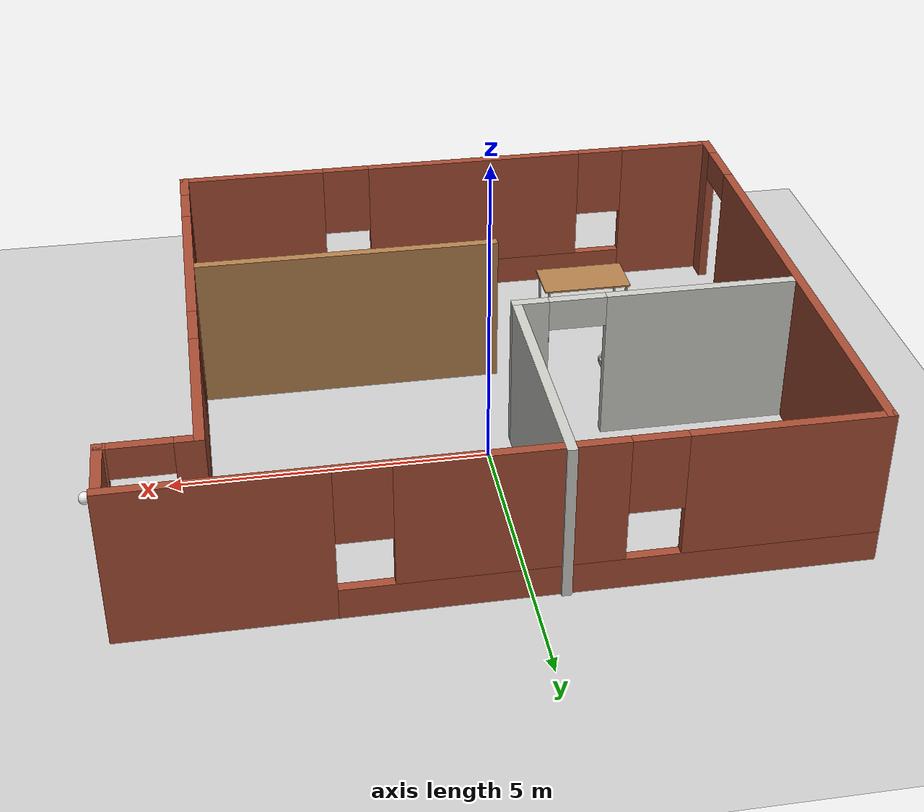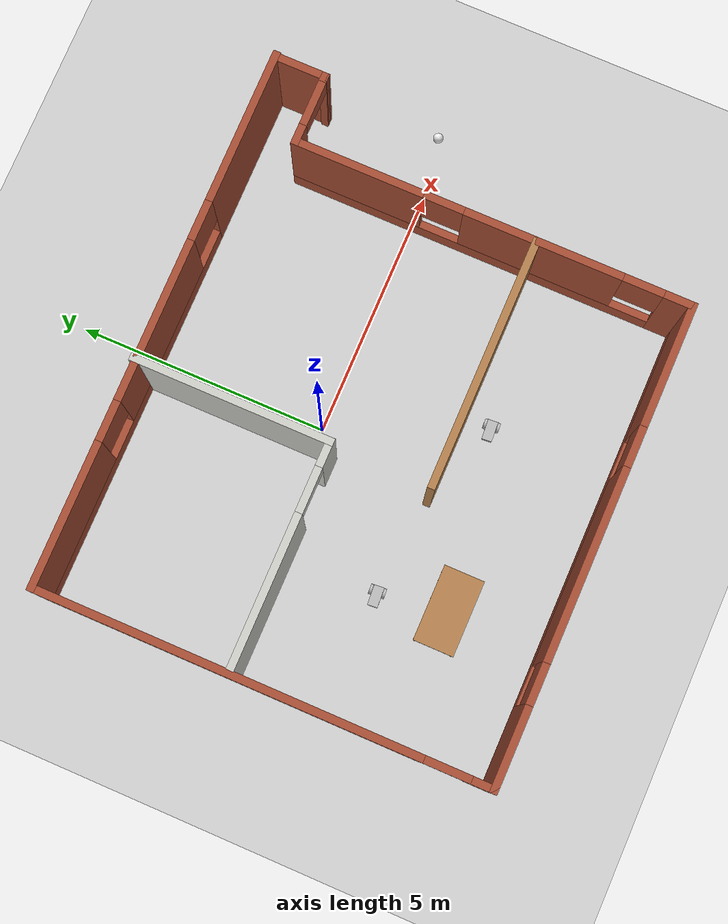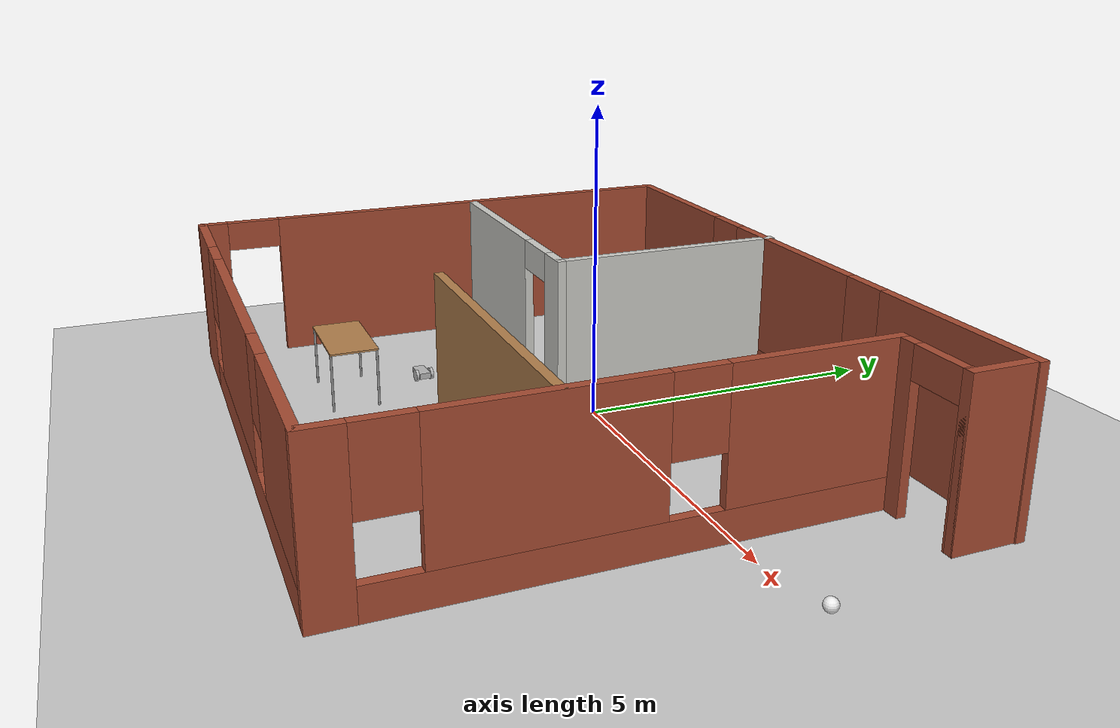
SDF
<sdf version="1.6">
 <world name="default">
  <plugin name="hello" filename="libhello.so"/>
  <light name="sun" type="directional">
   <pose>0 0 10 0 -0 0</pose>
   <diffuse>0.8 0.8 0.8 1</diffuse>
   <specular>0.1 0.1 0.1 1</specular>
   <attenuation>
    <range>1000</range>
    <constant>0.9</constant>
    <linear>0.01</linear>
    <quadratic>0.001</quadratic>
   </attenuation>
   <direction>-0.5 0.5 -1</direction>
  </light>
  <model name="ground_plane">
   <static>1</static>
   <link name="link">
    <collision name="collision">
     <geometry><plane><normal>0 0 1</normal><size>100 100</size></plane></geometry>
     <surface><friction><ode><mu>100</mu><mu2>50</mu2></ode></friction></surface>
    </collision>
    <visual name="visual">
     <cast_shadows>0</cast_shadows>
     <geometry><plane><normal>0 0 1</normal><size>100 100</size></plane></geometry>
     <material>
      <script><uri>file://media/materials/scripts/gazebo.material</uri><name>Gazebo/Grey</name></script>
     </material>
    </visual>
   </link>
  </model>
  <gravity>0 0 -9.8</gravity>
  <magnetic_field>6e-06 2.3e-05 -4.2e-05</magnetic_field>
  <atmosphere type="adiabatic"/>
  <physics name="default_physics" default="0" type="ode">
   <max_step_size>0.001</max_step_size>
   <real_time_factor>1</real_time_factor>
   <real_time_update_rate>1000</real_time_update_rate>
  </physics>
  <scene><ambient>0.4 0.4 0.4 1</ambient><background>0.7 0.7 0.7 1</background><shadows>1</shadows></scene>
  <spherical_coordinates>
   <surface_model>EARTH_WGS84</surface_model>
   <latitude_deg>0</latitude_deg>
   <longitude_deg>0</longitude_deg>
   <elevation>0</elevation>
   <heading_deg>0</heading_deg>
  </spherical_coordinates>
  <model name="mybuilding">
   <pose>0.397006 -1.00282 0 0 -0 0</pose>
   <link name="Wall_10">
    <pose>0 4.39952 0 0 -0 3.14159</pose>
    <visual name="Wall_10_Visual_0">
     <pose>-3.87928 0 1.25 0 -0 0</pose>
     <geometry><box><size>3.11594 0.15 2.5</size></box></geometry>
     <material>
      <script><uri>file://media/materials/scripts/gazebo.material</uri><name>Gazebo/Bricks</name></script>
      <ambient>1 1 1 1</ambient>
     </material>
     <meta><layer>0</layer></meta>
    </visual>
    <collision name="Wall_10_Collision_0">
     <geometry><box><size>3.11594 0.15 2.5</size></box></geometry>
     <pose>-3.87928 0 1.25 0 -0 0</pose>
    </collision>
    <visual name="Wall_10_Visual_1">
     <pose>1.55797 0 0.25 0 -0 0</pose>
     <geometry><box><size>7.75856 0.15 0.5</size></box></geometry>
     <material>
      <script><uri>file://media/materials/scripts/gazebo.material</uri><name>Gazebo/Bricks</name></script>
      <ambient>1 1 1 1</ambient>
     </material>
     <meta><layer>0</layer></meta>
    </visual>
    <collision name="Wall_10_Collision_1">
     <geometry><box><size>7.75856 0.15 0.5</size></box></geometry>
     <pose>1.55797 0 0.25 0 -0 0</pose>
    </collision>
    <visual name="Wall_10_Visual_2">
     <pose>0.09618 0 1.5 0 -0 0</pose>
     <geometry><box><size>3.23497 0.15 2</size></box></geometry>
     <material>
      <script><uri>file://media/materials/scripts/gazebo.material</uri><name>Gazebo/Bricks</name></script>
      <ambient>1 1 1 1</ambient>
     </material>
     <meta><layer>0</layer></meta>
    </visual>
    <collision name="Wall_10_Collision_2">
     <geometry><box><size>3.23497 0.15 2</size></box></geometry>
     <pose>0.09618 0 1.5 0 -0 0</pose>
    </collision>
    <visual name="Wall_10_Visual_3">
     <pose>3.97546 0 1.5 0 -0 0</pose>
     <geometry><box><size>2.92359 0.15 2</size></box></geometry>
     <material>
      <script><uri>file://media/materials/scripts/gazebo.material</uri><name>Gazebo/Bricks</name></script>
      <ambient>1 1 1 1</ambient>
     </material>
     <meta><layer>0</layer></meta>
    </visual>
    <collision name="Wall_10_Collision_3">
     <geometry><box><size>2.92359 0.15 2</size></box></geometry>
     <pose>3.97546 0 1.5 0 -0 0</pose>
    </collision>
    <visual name="Wall_10_Visual_4">
     <pose>-1.92131 0 1.9 0 -0 0</pose>
     <geometry><box><size>0.8 0.15 1.2</size></box></geometry>
     <material>
      <script><uri>file://media/materials/scripts/gazebo.material</uri><name>Gazebo/Bricks</name></script>
      <ambient>1 1 1 1</ambient>
     </material>
     <meta><layer>0</layer></meta>
    </visual>
    <collision name="Wall_10_Collision_4">
     <geometry><box><size>0.8 0.15 1.2</size></box></geometry>
     <pose>-1.92131 0 1.9 0 -0 0</pose>
    </collision>
    <visual name="Wall_10_Visual_5">
     <pose>2.11367 0 1.9 0 -0 0</pose>
     <geometry><box><size>0.8 0.15 1.2</size></box></geometry>
     <material>
      <script><uri>file://media/materials/scripts/gazebo.material</uri><name>Gazebo/Bricks</name></script>
      <ambient>1 1 1 1</ambient>
     </material>
     <meta><layer>0</layer></meta>
    </visual>
    <collision name="Wall_10_Collision_5">
     <geometry><box><size>0.8 0.15 1.2</size></box></geometry>
     <pose>2.11367 0 1.9 0 -0 0</pose>
    </collision>
   </link>
   <link name="Wall_11">
    <pose>-5.36225 -0.025483 0 0 0 -1.5708</pose>
    <visual name="Wall_11_Visual_0">
     <pose>-0.69944 0 1.25 0 -0 0</pose>
     <geometry><box><size>7.60112 0.15 2.5</size></box></geometry>
     <material>
      <script><uri>file://media/materials/scripts/gazebo.material</uri><name>Gazebo/Bricks</name></script>
      <ambient>1 1 1 1</ambient>
     </material>
     <meta><layer>0</layer></meta>
    </visual>
    <collision name="Wall_11_Collision_0">
     <geometry><box><size>7.60112 0.15 2.5</size></box></geometry>
     <pose>-0.69944 0 1.25 0 -0 0</pose>
    </collision>
    <visual name="Wall_11_Visual_1">
     <pose>4.25056 0 1.25 0 -0 0</pose>
     <geometry><box><size>0.498881 0.15 2.5</size></box></geometry>
     <material>
      <script><uri>file://media/materials/scripts/gazebo.material</uri><name>Gazebo/Bricks</name></script>
      <ambient>1 1 1 1</ambient>
     </material>
     <meta><layer>0</layer></meta>
    </visual>
    <collision name="Wall_11_Collision_1">
     <geometry><box><size>0.498881 0.15 2.5</size></box></geometry>
     <pose>4.25056 0 1.25 0 -0 0</pose>
    </collision>
    <visual name="Wall_11_Visual_2">
     <pose>3.55112 0 2.25 0 -0 0</pose>
     <geometry><box><size>0.9 0.15 0.5</size></box></geometry>
     <material>
      <script><uri>file://media/materials/scripts/gazebo.material</uri><name>Gazebo/Bricks</name></script>
      <ambient>1 1 1 1</ambient>
     </material>
     <meta><layer>0</layer></meta>
    </visual>
    <collision name="Wall_11_Collision_2">
     <geometry><box><size>0.9 0.15 0.5</size></box></geometry>
     <pose>3.55112 0 2.25 0 -0 0</pose>
    </collision>
   </link>
   <link name="Wall_12">
    <pose>-0.687251 -4.45048 0 0 -0 0</pose>
    <visual name="Wall_12_Visual_0">
     <pose>-3.92485 0 1.25 0 -0 0</pose>
     <geometry><box><size>1.65031 0.15 2.5</size></box></geometry>
     <material>
      <script><uri>file://media/materials/scripts/gazebo.material</uri><name>Gazebo/Bricks</name></script>
      <ambient>1 1 1 1</ambient>
     </material>
     <meta><layer>0</layer></meta>
    </visual>
    <collision name="Wall_12_Collision_0">
     <geometry><box><size>1.65031 0.15 2.5</size></box></geometry>
     <pose>-3.92485 0 1.25 0 -0 0</pose>
    </collision>
    <visual name="Wall_12_Visual_1">
     <pose>0.825154 0 0.25 0 -0 0</pose>
     <geometry><box><size>7.84969 0.15 0.5</size></box></geometry>
     <material>
      <script><uri>file://media/materials/scripts/gazebo.material</uri><name>Gazebo/Bricks</name></script>
      <ambient>1 1 1 1</ambient>
     </material>
     <meta><layer>0</layer></meta>
    </visual>
    <collision name="Wall_12_Collision_1">
     <geometry><box><size>7.84969 0.15 0.5</size></box></geometry>
     <pose>0.825154 0 0.25 0 -0 0</pose>
    </collision>
    <visual name="Wall_12_Visual_2">
     <pose>-0.412075 0 1.5 0 -0 0</pose>
     <geometry><box><size>3.77523 0.15 2</size></box></geometry>
     <material>
      <script><uri>file://media/materials/scripts/gazebo.material</uri><name>Gazebo/Bricks</name></script>
      <ambient>1 1 1 1</ambient>
     </material>
     <meta><layer>0</layer></meta>
    </visual>
    <collision name="Wall_12_Collision_2">
     <geometry><box><size>3.77523 0.15 2</size></box></geometry>
     <pose>-0.412075 0 1.5 0 -0 0</pose>
    </collision>
    <visual name="Wall_12_Visual_3">
     <pose>3.51277 0 1.5 0 -0 0</pose>
     <geometry><box><size>2.47446 0.15 2</size></box></geometry>
     <material>
      <script><uri>file://media/materials/scripts/gazebo.material</uri><name>Gazebo/Bricks</name></script>
      <ambient>1 1 1 1</ambient>
     </material>
     <meta><layer>0</layer></meta>
    </visual>
    <collision name="Wall_12_Collision_3">
     <geometry><box><size>2.47446 0.15 2</size></box></geometry>
     <pose>3.51277 0 1.5 0 -0 0</pose>
    </collision>
    <visual name="Wall_12_Visual_4">
     <pose>-2.69969 0 1.9 0 -0 0</pose>
     <geometry><box><size>0.8 0.15 1.2</size></box></geometry>
     <material>
      <script><uri>file://media/materials/scripts/gazebo.material</uri><name>Gazebo/Bricks</name></script>
      <ambient>1 1 1 1</ambient>
     </material>
     <meta><layer>0</layer></meta>
    </visual>
    <collision name="Wall_12_Collision_4">
     <geometry><box><size>0.8 0.15 1.2</size></box></geometry>
     <pose>-2.69969 0 1.9 0 -0 0</pose>
    </collision>
    <visual name="Wall_12_Visual_5">
     <pose>1.87554 0 1.9 0 -0 0</pose>
     <geometry><box><size>0.8 0.15 1.2</size></box></geometry>
     <material>
      <script><uri>file://media/materials/scripts/gazebo.material</uri><name>Gazebo/Bricks</name></script>
      <ambient>1 1 1 1</ambient>
     </material>
     <meta><layer>0</layer></meta>
    </visual>
    <collision name="Wall_12_Collision_5">
     <geometry><box><size>0.8 0.15 1.2</size></box></geometry>
     <pose>1.87554 0 1.9 0 -0 0</pose>
    </collision>
   </link>
   <link name="Wall_13">
    <pose>3.98775 -0.525483 0 0 -0 1.5708</pose>
    <visual name="Wall_13_Visual_0">
     <pose>-3.68566 0 1.25 0 -0 0</pose>
     <geometry><box><size>0.628682 0.15 2.5</size></box></geometry>
     <material>
      <script><uri>file://media/materials/scripts/gazebo.material</uri><name>Gazebo/Bricks</name></script>
      <ambient>1 1 1 1</ambient>
     </material>
     <meta><layer>0</layer></meta>
    </visual>
    <collision name="Wall_13_Collision_0">
     <geometry><box><size>0.628682 0.15 2.5</size></box></geometry>
     <pose>-3.68566 0 1.25 0 -0 0</pose>
    </collision>
    <visual name="Wall_13_Visual_1">
     <pose>0.314341 0 0.25 0 -0 0</pose>
     <geometry><box><size>7.37132 0.15 0.5</size></box></geometry>
     <material>
      <script><uri>file://media/materials/scripts/gazebo.material</uri><name>Gazebo/Bricks</name></script>
      <ambient>1 1 1 1</ambient>
     </material>
     <meta><layer>0</layer></meta>
    </visual>
    <collision name="Wall_13_Collision_1">
     <geometry><box><size>7.37132 0.15 0.5</size></box></geometry>
     <pose>0.314341 0 0.25 0 -0 0</pose>
    </collision>
    <visual name="Wall_13_Visual_2">
     <pose>-1.00369 0 1.5 0 -0 0</pose>
     <geometry><box><size>3.13526 0.15 2</size></box></geometry>
     <material>
      <script><uri>file://media/materials/scripts/gazebo.material</uri><name>Gazebo/Bricks</name></script>
      <ambient>1 1 1 1</ambient>
     </material>
     <meta><layer>0</layer></meta>
    </visual>
    <collision name="Wall_13_Collision_2">
     <geometry><box><size>3.13526 0.15 2</size></box></geometry>
     <pose>-1.00369 0 1.5 0 -0 0</pose>
    </collision>
    <visual name="Wall_13_Visual_3">
     <pose>2.68197 0 1.5 0 -0 0</pose>
     <geometry><box><size>2.63605 0.15 2</size></box></geometry>
     <material>
      <script><uri>file://media/materials/scripts/gazebo.material</uri><name>Gazebo/Bricks</name></script>
      <ambient>1 1 1 1</ambient>
     </material>
     <meta><layer>0</layer></meta>
    </visual>
    <collision name="Wall_13_Collision_3">
     <geometry><box><size>2.63605 0.15 2</size></box></geometry>
     <pose>2.68197 0 1.5 0 -0 0</pose>
    </collision>
    <visual name="Wall_13_Visual_4">
     <pose>-2.97132 0 1.9 0 -0 0</pose>
     <geometry><box><size>0.8 0.15 1.2</size></box></geometry>
     <material>
      <script><uri>file://media/materials/scripts/gazebo.material</uri><name>Gazebo/Bricks</name></script>
      <ambient>1 1 1 1</ambient>
     </material>
     <meta><layer>0</layer></meta>
    </visual>
    <collision name="Wall_13_Collision_4">
     <geometry><box><size>0.8 0.15 1.2</size></box></geometry>
     <pose>-2.97132 0 1.9 0 -0 0</pose>
    </collision>
    <visual name="Wall_13_Visual_5">
     <pose>0.963946 0 1.9 0 -0 0</pose>
     <geometry><box><size>0.8 0.15 1.2</size></box></geometry>
     <material>
      <script><uri>file://media/materials/scripts/gazebo.material</uri><name>Gazebo/Bricks</name></script>
      <ambient>1 1 1 1</ambient>
     </material>
     <meta><layer>0</layer></meta>
    </visual>
    <collision name="Wall_13_Collision_5">
     <geometry><box><size>0.8 0.15 1.2</size></box></geometry>
     <pose>0.963946 0 1.9 0 -0 0</pose>
    </collision>
   </link>
   <link name="Wall_14">
    <pose>4.66275 3.39952 0 0 -0 0</pose>
    <visual name="Wall_14_Visual_0">
     <pose>-0.542046 0 1.25 0 -0 0</pose>
     <geometry><box><size>0.415909 0.15 2.5</size></box></geometry>
     <material>
      <script><uri>file://media/materials/scripts/gazebo.material</uri><name>Gazebo/Bricks</name></script>
      <ambient>1 1 1 1</ambient>
     </material>
     <meta><layer>0</layer></meta>
    </visual>
    <collision name="Wall_14_Collision_0">
     <geometry><box><size>0.415909 0.15 2.5</size></box></geometry>
     <pose>-0.542046 0 1.25 0 -0 0</pose>
    </collision>
    <visual name="Wall_14_Visual_1">
     <pose>0.657954 0 1.25 0 -0 0</pose>
     <geometry><box><size>0.184091 0.15 2.5</size></box></geometry>
     <material>
      <script><uri>file://media/materials/scripts/gazebo.material</uri><name>Gazebo/Bricks</name></script>
      <ambient>1 1 1 1</ambient>
     </material>
     <meta><layer>0</layer></meta>
    </visual>
    <collision name="Wall_14_Collision_1">
     <geometry><box><size>0.184091 0.15 2.5</size></box></geometry>
     <pose>0.657954 0 1.25 0 -0 0</pose>
    </collision>
    <visual name="Wall_14_Visual_2">
     <pose>0.115909 0 2.25 0 -0 0</pose>
     <geometry><box><size>0.9 0.15 0.5</size></box></geometry>
     <material>
      <script><uri>file://media/materials/scripts/gazebo.material</uri><name>Gazebo/Bricks</name></script>
      <ambient>1 1 1 1</ambient>
     </material>
     <meta><layer>0</layer></meta>
    </visual>
    <collision name="Wall_14_Collision_2">
     <geometry><box><size>0.9 0.15 0.5</size></box></geometry>
     <pose>0.115909 0 2.25 0 -0 0</pose>
    </collision>
   </link>
   <link name="Wall_15">
    <collision name="Wall_15_Collision">
     <geometry><box><size>1 0.15 2.5</size></box></geometry>
     <pose>0 0 1.25 0 -0 0</pose>
    </collision>
    <visual name="Wall_15_Visual">
     <pose>0 0 1.25 0 -0 0</pose>
     <geometry><box><size>1 0.15 2.5</size></box></geometry>
     <material>
      <script><uri>file://media/materials/scripts/gazebo.material</uri><name>Gazebo/Bricks</name></script>
      <ambient>1 1 1 1</ambient>
     </material>
     <meta><layer>0</layer></meta>
    </visual>
    <pose>5.33775 3.82452 0 0 -0 1.5708</pose>
   </link>
   <link name="Wall_17">
    <collision name="Wall_17_Collision">
     <geometry><box><size>4 0.15 2.5</size></box></geometry>
     <pose>0 0 1.25 0 -0 0</pose>
    </collision>
    <visual name="Wall_17_Visual">
     <pose>0 0 1.25 0 -0 0</pose>
     <geometry><box><size>4 0.15 2.5</size></box></geometry>
     <material>
      <script><uri>file://media/materials/scripts/gazebo.material</uri><name>Gazebo/CeilingTiled</name></script>
      <ambient>0.333333 0.333333 1 1</ambient>
     </material>
     <meta><layer>0</layer></meta>
    </visual>
    <pose>-0.879432 2.52548 0 0 0 -1.5708</pose>
   </link>
   <link name="Wall_18">
    <pose>-3.05443 0.600483 0 0 -0 3.14159</pose>
    <visual name="Wall_18_Visual_0">
     <pose>-1.96198 0 1.25 0 -0 0</pose>
     <geometry><box><size>0.576044 0.15 2.5</size></box></geometry>
     <material>
      <script><uri>file://media/materials/scripts/gazebo.material</uri><name>Gazebo/CeilingTiled</name></script>
      <ambient>0.333333 0.333333 1 1</ambient>
     </material>
     <meta><layer>0</layer></meta>
    </visual>
    <collision name="Wall_18_Collision_0">
     <geometry><box><size>0.576044 0.15 2.5</size></box></geometry>
     <pose>-1.96198 0 1.25 0 -0 0</pose>
    </collision>
    <visual name="Wall_18_Visual_1">
     <pose>0.738022 0 1.25 0 -0 0</pose>
     <geometry><box><size>3.02396 0.15 2.5</size></box></geometry>
     <material>
      <script><uri>file://media/materials/scripts/gazebo.material</uri><name>Gazebo/CeilingTiled</name></script>
      <ambient>0.333333 0.333333 1 1</ambient>
     </material>
     <meta><layer>0</layer></meta>
    </visual>
    <collision name="Wall_18_Collision_1">
     <geometry><box><size>3.02396 0.15 2.5</size></box></geometry>
     <pose>0.738022 0 1.25 0 -0 0</pose>
    </collision>
    <visual name="Wall_18_Visual_2">
     <pose>-1.22396 0 2.25 0 -0 0</pose>
     <geometry><box><size>0.9 0.15 0.5</size></box></geometry>
     <material>
      <script><uri>file://media/materials/scripts/gazebo.material</uri><name>Gazebo/CeilingTiled</name></script>
      <ambient>0.333333 0.333333 1 1</ambient>
     </material>
     <meta><layer>0</layer></meta>
    </visual>
    <collision name="Wall_18_Collision_2">
     <geometry><box><size>0.9 0.15 0.5</size></box></geometry>
     <pose>-1.22396 0 2.25 0 -0 0</pose>
    </collision>
   </link>
   <link name="Wall_20">
    <collision name="Wall_20_Collision">
     <geometry><box><size>5 0.15 2.5</size></box></geometry>
     <pose>0 0 1.25 0 -0 0</pose>
    </collision>
    <visual name="Wall_20_Visual">
     <pose>0 0 1.25 0 -0 0</pose>
     <geometry><box><size>5 0.15 2.5</size></box></geometry>
     <material>
      <script><uri>file://media/materials/scripts/gazebo.material</uri><name>Gazebo/Wood</name></script>
      <ambient>1 1 1 1</ambient>
     </material>
     <meta><layer>0</layer></meta>
    </visual>
    <pose>1.54324 -1.38889 0 0 -0 3.14159</pose>
   </link>
   <static>1</static>
  </model>
  <model name="robot01">
   <static>0</static>
   <link name="chassis">
    <pose>0 0 0.1 0 -0 0</pose>
    <collision name="collision"><geometry><box><size>0.4 0.2 0.1</size></box></geometry></collision>
    <visual name="visual"><geometry><box><size>0.4 0.2 0.1</size></box></geometry></visual>
    <collision name="caster_collision">
     <pose>-0.15 0 -0.05 0 -0 0</pose>
     <geometry><sphere><radius>0.05</radius></sphere></geometry>
     <surface><friction><ode><mu>0</mu><mu2>0</mu2><slip1>1</slip1><slip2>1</slip2></ode></friction></surface>
    </collision>
    <visual name="caster_visual">
     <pose>-0.15 0 -0.05 0 -0 0</pose>
     <geometry><sphere><radius>0.05</radius></sphere></geometry>
    </visual>
    <inertial>
     <inertia><ixx>1</ixx><ixy>0</ixy><ixz>0</ixz><iyy>1</iyy><iyz>0</iyz><izz>1</izz></inertia>
     <mass>1</mass>
    </inertial>
   </link>
   <link name="left_wheel">
    <pose>0.1 0.13 0.1 -0 1.5707 1.5707</pose>
    <collision name="collision">
     <geometry><cylinder><radius>0.1</radius><length>0.05</length></cylinder></geometry>
    </collision>
    <visual name="visual">
     <geometry><cylinder><radius>0.1</radius><length>0.05</length></cylinder></geometry>
    </visual>
    <inertial>
     <inertia><ixx>1</ixx><ixy>0</ixy><ixz>0</ixz><iyy>1</iyy><iyz>0</iyz><izz>1</izz></inertia>
     <mass>1</mass>
    </inertial>
   </link>
   <link name="right_wheel">
    <pose>0.1 -0.13 0.1 -0 1.5707 1.5707</pose>
    <collision name="collision">
     <geometry><cylinder><radius>0.1</radius><length>0.05</length></cylinder></geometry>
    </collision>
    <visual name="visual">
     <geometry><cylinder><radius>0.1</radius><length>0.05</length></cylinder></geometry>
    </visual>
    <inertial>
     <inertia><ixx>1</ixx><ixy>0</ixy><ixz>0</ixz><iyy>1</iyy><iyz>0</iyz><izz>1</izz></inertia>
     <mass>1</mass>
    </inertial>
   </link>
   <joint name="left_wheel_hinge" type="revolute">
    <pose>0 0 -0.03 0 -0 0</pose>
    <child>left_wheel</child>
    <parent>chassis</parent>
    <axis>
     <xyz>0 1 0</xyz>
     <use_parent_model_frame>1</use_parent_model_frame>
     <limit><lower>-1e+16</lower><upper>1e+16</upper></limit>
     <dynamics><spring_reference>0</spring_reference><spring_stiffness>0</spring_stiffness></dynamics>
    </axis>
   </joint>
   <joint name="right_wheel_hinge" type="revolute">
    <pose>0 0 0.03 0 -0 0</pose>
    <child>right_wheel</child>
    <parent>chassis</parent>
    <axis>
     <xyz>0 1 0</xyz>
     <use_parent_model_frame>1</use_parent_model_frame>
     <limit><lower>-1e+16</lower><upper>1e+16</upper></limit>
     <dynamics><spring_reference>0</spring_reference><spring_stiffness>0</spring_stiffness></dynamics>
    </axis>
   </joint>
   <pose>-2.52576 -2.19346 1e-06 4.8e-05 -8e-06 0.062949</pose>
  </model>
  <model name="robot01_0">
   <static>0</static>
   <link name="chassis">
    <pose>0 0 0.1 0 -0 0</pose>
    <collision name="collision"><geometry><box><size>0.4 0.2 0.1</size></box></geometry></collision>
    <visual name="visual"><geometry><box><size>0.4 0.2 0.1</size></box></geometry></visual>
    <collision name="caster_collision">
     <pose>-0.15 0 -0.05 0 -0 0</pose>
     <geometry><sphere><radius>0.05</radius></sphere></geometry>
     <surface><friction><ode><mu>0</mu><mu2>0</mu2><slip1>1</slip1><slip2>1</slip2></ode></friction></surface>
    </collision>
    <visual name="caster_visual">
     <pose>-0.15 0 -0.05 0 -0 0</pose>
     <geometry><sphere><radius>0.05</radius></sphere></geometry>
    </visual>
    <inertial>
     <inertia><ixx>1</ixx><ixy>0</ixy><ixz>0</ixz><iyy>1</iyy><iyz>0</iyz><izz>1</izz></inertia>
     <mass>1</mass>
    </inertial>
   </link>
   <link name="left_wheel">
    <pose>0.1 0.13 0.1 -0 1.5707 1.5707</pose>
    <collision name="collision">
     <geometry><cylinder><radius>0.1</radius><length>0.05</length></cylinder></geometry>
    </collision>
    <visual name="visual">
     <geometry><cylinder><radius>0.1</radius><length>0.05</length></cylinder></geometry>
    </visual>
    <inertial>
     <inertia><ixx>1</ixx><ixy>0</ixy><ixz>0</ixz><iyy>1</iyy><iyz>0</iyz><izz>1</izz></inertia>
     <mass>1</mass>
    </inertial>
   </link>
   <link name="right_wheel">
    <pose>0.1 -0.13 0.1 -0 1.5707 1.5707</pose>
    <collision name="collision">
     <geometry><cylinder><radius>0.1</radius><length>0.05</length></cylinder></geometry>
    </collision>
    <visual name="visual">
     <geometry><cylinder><radius>0.1</radius><length>0.05</length></cylinder></geometry>
    </visual>
    <inertial>
     <inertia><ixx>1</ixx><ixy>0</ixy><ixz>0</ixz><iyy>1</iyy><iyz>0</iyz><izz>1</izz></inertia>
     <mass>1</mass>
    </inertial>
   </link>
   <joint name="left_wheel_hinge" type="revolute">
    <pose>0 0 -0.03 0 -0 0</pose>
    <child>left_wheel</child>
    <parent>chassis</parent>
    <axis>
     <xyz>0 1 0</xyz>
     <use_parent_model_frame>1</use_parent_model_frame>
     <limit><lower>-1e+16</lower><upper>1e+16</upper></limit>
     <dynamics><spring_reference>0</spring_reference><spring_stiffness>0</spring_stiffness></dynamics>
    </axis>
   </joint>
   <joint name="right_wheel_hinge" type="revolute">
    <pose>0 0 0.03 0 -0 0</pose>
    <child>right_wheel</child>
    <parent>chassis</parent>
    <axis>
     <xyz>0 1 0</xyz>
     <use_parent_model_frame>1</use_parent_model_frame>
     <limit><lower>-1e+16</lower><upper>1e+16</upper></limit>
     <dynamics><spring_reference>0</spring_reference><spring_stiffness>0</spring_stiffness></dynamics>
    </axis>
   </joint>
   <pose>1.24818 -2.95282 1e-06 4.8e-05 -9e-06 0.063178</pose>
  </model>
  <model name="table">
   <static>1</static>
   <link name="link">
    <collision name="surface">
     <pose>0 0 1 0 -0 0</pose>
     <geometry><box><size>1.5 0.8 0.03</size></box></geometry>
     <surface><friction><ode><mu>0.6</mu><mu2>0.6</mu2></ode></friction></surface>
    </collision>
    <visual name="visual1">
     <pose>0 0 1 0 -0 0</pose>
     <geometry><box><size>1.5 0.8 0.03</size></box></geometry>
     <material>
      <script><uri>file://media/materials/scripts/gazebo.material</uri><name>Gazebo/Wood</name></script>
     </material>
    </visual>
    <collision name="front_left_leg">
     <pose>0.68 0.38 0.5 0 -0 0</pose>
     <geometry><cylinder><radius>0.02</radius><length>1</length></cylinder></geometry>
    </collision>
    <visual name="front_left_leg">
     <pose>0.68 0.38 0.5 0 -0 0</pose>
     <geometry><cylinder><radius>0.02</radius><length>1</length></cylinder></geometry>
     <material>
      <script><uri>file://media/materials/scripts/gazebo.material</uri><name>Gazebo/Grey</name></script>
     </material>
    </visual>
    <collision name="front_right_leg">
     <pose>0.68 -0.38 0.5 0 -0 0</pose>
     <geometry><cylinder><radius>0.02</radius><length>1</length></cylinder></geometry>
    </collision>
    <visual name="front_right_leg">
     <pose>0.68 -0.38 0.5 0 -0 0</pose>
     <geometry><cylinder><radius>0.02</radius><length>1</length></cylinder></geometry>
     <material>
      <script><uri>file://media/materials/scripts/gazebo.material</uri><name>Gazebo/Grey</name></script>
     </material>
    </visual>
    <collision name="back_right_leg">
     <pose>-0.68 -0.38 0.5 0 -0 0</pose>
     <geometry><cylinder><radius>0.02</radius><length>1</length></cylinder></geometry>
    </collision>
    <visual name="back_right_leg">
     <pose>-0.68 -0.38 0.5 0 -0 0</pose>
     <geometry><cylinder><radius>0.02</radius><length>1</length></cylinder></geometry>
     <material>
      <script><uri>file://media/materials/scripts/gazebo.material</uri><name>Gazebo/Grey</name></script>
     </material>
    </visual>
    <collision name="back_left_leg">
     <pose>-0.68 0.38 0.5 0 -0 0</pose>
     <geometry><cylinder><radius>0.02</radius><length>1</length></cylinder></geometry>
    </collision>
    <visual name="back_left_leg">
     <pose>-0.68 0.38 0.5 0 -0 0</pose>
     <geometry><cylinder><radius>0.02</radius><length>1</length></cylinder></geometry>
     <material>
      <script><uri>file://media/materials/scripts/gazebo.material</uri><name>Gazebo/Grey</name></script>
     </material>
    </visual>
   </link>
   <pose>-2.3052 -3.55172 0 0 -0 0</pose>
  </model>
  <model name="my_ball">
   <link name="link_0">
    <pose>0.283081 -0.201251 0 0 -0 0</pose>
    <inertial>
     <mass>1</mass>
     <inertia><ixx>0.1</ixx><ixy>0</ixy><ixz>0</ixz><iyy>0.1</iyy><iyz>0</iyz><izz>0.1</izz></inertia>
    </inertial>
    <visual name="visual">
     <geometry><sphere><radius>0.1</radius></sphere></geometry>
     <material>
      <lighting>1</lighting>
      <script><uri>file://media/materials/scripts/gazebo.material</uri><name>Gazebo/White</name></script>
      <shader type="pixel"><normal_map>__default__</normal_map></shader>
      <ambient>1 1 1 1</ambient>
      <diffuse>1 1 1 1</diffuse>
      <specular>1 1 1 1</specular>
      <emissive>1 1 1 1</emissive>
     </material>
    </visual>
    <collision name="collision">
     <geometry><sphere><radius>0.1</radius></sphere></geometry>
     <surface>
      <friction>
       <ode><mu>1</mu><mu2>1</mu2><fdir1>0 0 0</fdir1><slip1>0</slip1><slip2>0</slip2></ode>
       <torsional>
        <coefficient>1</coefficient>
        <patch_radius>0</patch_radius>
        <surface_radius>0</surface_radius>
        <use_patch_radius>1</use_patch_radius>
        <ode><slip>0</slip></ode>
       </torsional>
      </friction>
      <bounce><restitution_coefficient>0</restitution_coefficient><threshold>1e+06</threshold></bounce>
      <contact>
       <collide_without_contact>0</collide_without_contact>
       <collide_without_contact_bitmask>1</collide_without_contact_bitmask>
       <collide_bitmask>1</collide_bitmask>
       <ode>
        <soft_cfm>0</soft_cfm>
        <soft_erp>0.2</soft_erp>
        <kp>1e+13</kp>
        <kd>1</kd>
        <max_vel>0.01</max_vel>
        <min_depth>0</min_depth>
       </ode>
       <bullet>
        <split_impulse>1</split_impulse>
        <split_impulse_penetration_threshold>-0.01</split_impulse_penetration_threshold>
        <soft_cfm>0</soft_cfm>
        <soft_erp>0.2</soft_erp>
        <kp>1e+13</kp>
        <kd>1</kd>
       </bullet>
      </contact>
     </surface>
    </collision>
   </link>
   <static>0</static>
   <pose>5.95232 0.423117 0.1 0 -0 0</pose>
  </model>
 </world>
</sdf>
